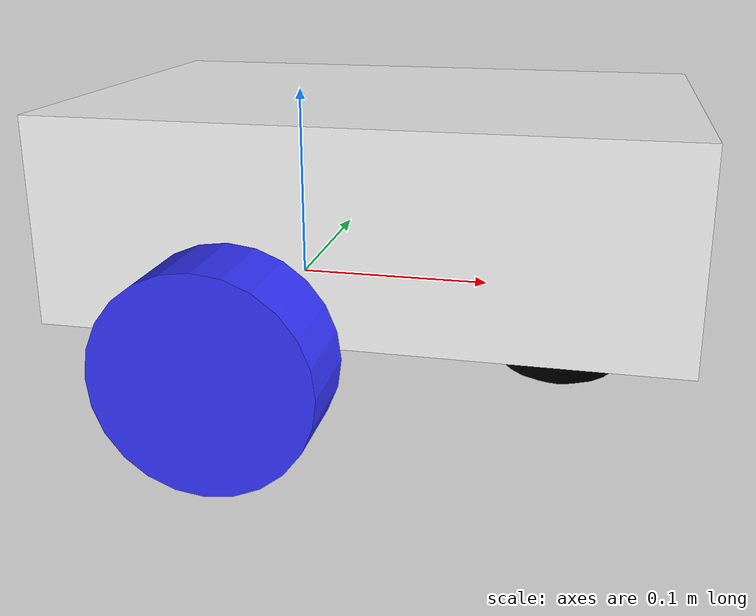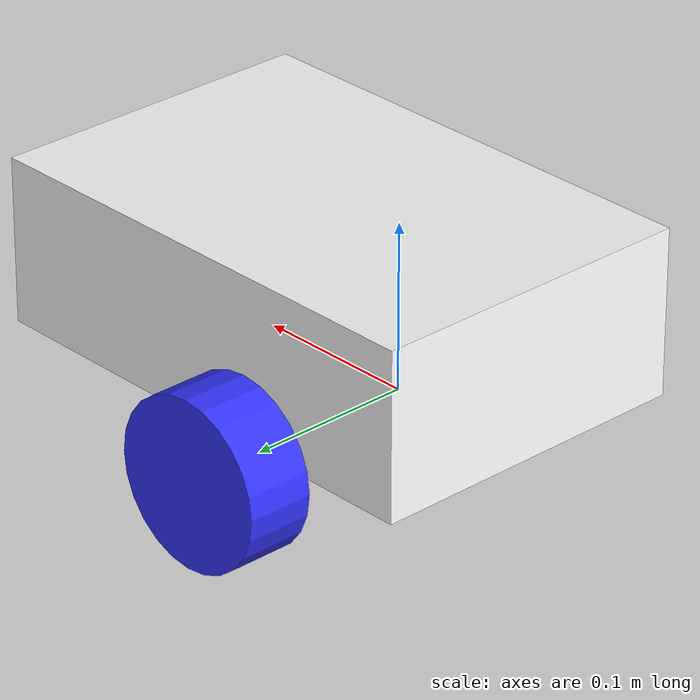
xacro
<?xml version="1.0"?>
<robot xmlns:xacro="http://www.ros.org/wiki/xacro">

    <!-- Inclusion des macros d'inertie -->
    <xacro:include filename="inertial.xacro"/>

    <!-- Dimensions du châssis -->
    <xacro:property name="chassis_length" value="0.3"/>
    <xacro:property name="chassis_width" value="0.2"/>
    <xacro:property name="chassis_height" value="0.1"/>

    <!-- Matériaux -->
    <material name="white">
        <color rgba="1 1 1 1"/>
    </material>

    <material name="orange">
        <color rgba="1 0.3 0.1 1"/>
    </material>

    <material name="blue">
        <color rgba="0.2 0.2 1 1"/>
    </material>

    <material name="black">
        <color rgba="0 0 0 1"/>
    </material>

    <material name="red">
        <color rgba="1 0 0 1"/>
    </material>

    <!-- Chassis -->
    <link name="chassis">
        <visual>
            <origin xyz="${chassis_length/2} 0 ${chassis_height/2}"/>
            <geometry>
                <box size="${chassis_length} ${chassis_width} ${chassis_height}"/>
            </geometry>
            <material name="white"/>
        </visual>

        <collision>
            <origin xyz="${chassis_length/2} 0 ${chassis_height/2}"/>
            <geometry>
                <box size="${chassis_length} ${chassis_width} ${chassis_height}"/>
            </geometry>
        </collision>

        <xacro:inertial_box mass="0.5" x="${chassis_length}" y="${chassis_width}" z="${chassis_height}">
            <origin xyz="${chassis_length/2} 0 ${chassis_height/2}" rpy="0 0 0"/>
        </xacro:inertial_box>
    </link>

    <!-- Base link -->

    <link name="base_link"/>

    <joint name="base_link_to_chassis" type="fixed">
        <parent link="base_link"/>
        <child link="chassis"/>
        <origin xyz="-0.1 0 0" rpy="0 0 0"/>
    </joint>

    <gazebo reference="chassis">
        <material>Gazebo/White</material>

    </gazebo>

    <!-- Roue gauche -->
    <link name="wheel_left">

        <visual>
            <origin xyz="0 0 0" rpy="0 0 0"/>
            <geometry>
                <cylinder length="0.04" radius="0.05"/>
            </geometry>
            <material name="blue"/>
        </visual>

        <collision>
            <origin xyz="0 0 0" rpy="0 0 0"/>
            <geometry>
                <cylinder length="0.04" radius="0.05"/>
            </geometry>
        </collision>

        <xacro:inertial_cylinder mass="0.1" length="0.04" radius="0.05">
            <origin xyz="0 0 0" rpy="0 0 0"/>
        </xacro:inertial_cylinder>

    </link>

    <gazebo reference="wheel_left">
        <material>Gazebo/Blue</material>
        <mu1>0.2</mu1>
        <mu2>0.2</mu2>
        <kp>1000000.0</kp>
        <kd>100.0</kd>
        <minDepth>0.0001</minDepth>
        <maxVel>1.0</maxVel>
    </gazebo>

    <joint name="wheel_left_joint" type="continuous">
        <parent link="base_link"/>
        <child link="wheel_left"/>
        <origin xyz="0 ${chassis_width/2 + 0.03} 0" rpy="-1.57 0 0"/>
        <axis xyz="0 0 1"/>
    </joint>

    <!-- Roue droite -->
    <link name="wheel_right">
        <visual>
            <origin xyz="0 0 0" rpy="0 0 0"/>
            <geometry>
                <cylinder length="0.04" radius="0.05"/>
            </geometry>
            <material name="blue"/>
        </visual>

        <collision>
            <origin xyz="0 0 0" rpy="0 0 0"/>
            <geometry>
                <cylinder length="0.04" radius="0.05"/>
            </geometry>
        </collision>

        <xacro:inertial_cylinder mass="0.1" length="0.04" radius="0.05">
            <origin xyz="0 0 0" rpy="0 0 0"/>
        </xacro:inertial_cylinder>
    </link>

    <gazebo reference="wheel_right">
        <material>Gazebo/Blue</material>
        <mu1>0.2</mu1>
        <mu2>0.2</mu2>
        <kp>1000000.0</kp>
        <kd>100.0</kd>
        <minDepth>0.0001</minDepth>
        <maxVel>1.0</maxVel>
    </gazebo>

    <joint name="wheel_right_joint" type="continuous">
        <parent link="base_link"/>
        <child link="wheel_right"/>
        <origin xyz="0 -${chassis_width/2 + 0.03} 0" rpy="1.57 0 0"/>
        <axis xyz="0 0 -1"/>
    </joint>

    <!-- Roue folle (caster) -->
    <link name="caster_wheel">
        <visual>
            <geometry>
                <sphere radius="0.05"/>
            </geometry>
            <origin xyz="0 0 0" rpy="0 0 0"/>
            <material name="black"/>
        </visual>

        <collision>
            <geometry>
                <sphere radius="0.05"/>
            </geometry>
            <origin xyz="0 0 0" rpy="0 0 0"/>
            <material name="black"/>
        </collision>

        <xacro:inertial_sphere mass="0.1" radius="0.05">
            <origin xyz="0 0 0" rpy="0 0 0"/>
        </xacro:inertial_sphere>
    </link>

    <joint name="caster_wheel_joint" type="fixed">
        <parent link="chassis"/>
        <child link="caster_wheel"/>
        <origin xyz="0.24 0 0" rpy="0 0 0"/>
    </joint>

    <gazebo reference="caster_wheel">
        <material>Gazebo/Black</material>
        <mu1 value="0.001"/>
        <mu2 value="0.001"/>
    </gazebo>

</robot>
